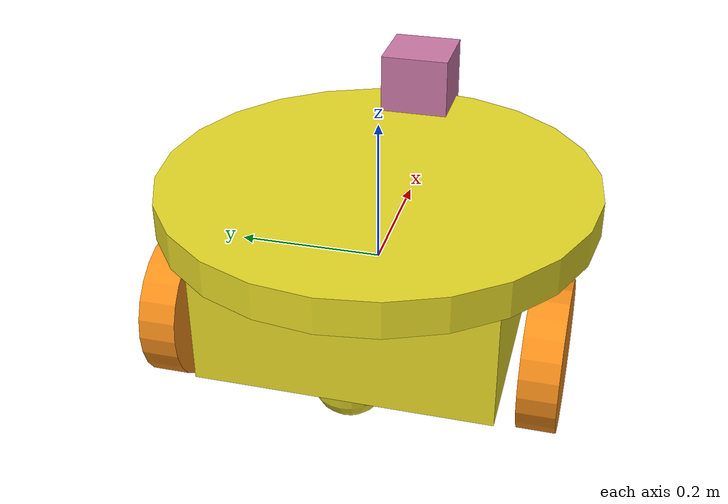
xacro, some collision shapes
<?xml version='1.0'?>

<robot name="my_robot" xmlns:xacro="http://www.ros.org/wiki/xacro">

  <xacro:include filename="$(find my_robot)/urdf/my_robot.gazebo" />

  <link name="robot_footprint"></link>

  <joint name="robot_footprint_joint" type="fixed">
    <origin xyz="0 0 0" rpy="0 0 0" />
    <parent link="robot_footprint"/>
    <child link="chassis" />
  </joint>

  <link name='chassis'>
    <pose>0 0 0.1 0 0 0</pose>

    <inertial>
      <mass value="5.0"/>
      <origin xyz="0.0 0 0" rpy=" 0 0 0"/>
      <inertia
          ixx="0.1" ixy="0" ixz="0"
          iyy="0.1" iyz="0"
          izz="0.1"
      />
    </inertial>

    <collision name='collision'>
      <origin xyz="0 0 0" rpy=" 0 0 0"/>
      <geometry>
        <box size=".4 .4 .2"/>
      </geometry>
    </collision>

    <visual name='chassis_visual'>
      <origin xyz="0 0 0" rpy=" 0 0 0"/>
      <geometry>
        <box size=".4 .4 .2"/>
      </geometry>
    </visual>

    <collision name='back_caster_collision'>
      <origin xyz="-0.15 0 -0.1" rpy=" 0 0 0"/>
      <geometry>
        <sphere radius="0.0499"/>
      </geometry>
    </collision>

    <visual name='back_caster_visual'>
      <origin xyz="-0.15 0 -0.1" rpy=" 0 0 0"/>
      <geometry>
        <sphere radius="0.05"/>
      </geometry>
    </visual>

    <collision name='front_caster_collision'>
      <origin xyz="0.15 0 -0.1" rpy=" 0 0 0"/>
      <geometry>
        <sphere radius="0.0499"/>
      </geometry>
    </collision>

    <visual name='front_caster_visual'>
      <origin xyz="0.15 0 -0.1" rpy=" 0 0 0"/>
      <geometry>
        <sphere radius="0.05"/>
      </geometry>
    </visual>

  </link>

  <link name="left_wheel">

    <collision name="left_wheel_collision">
      <origin xyz="0 0 0" rpy=" 0 1.5707 1.5707"/>
      <geometry>
        <cylinder length="0.05" radius="0.1"/>
      </geometry>
    </collision>

    <visual name="left_wheel_visual">
      <origin xyz="0 0 0" rpy=" 0 1.5707 1.5707"/>
      <geometry>
        <cylinder length="0.05" radius="0.1"/>
      </geometry>
    </visual>

    <inertial>
      <mass value="5.0"/>
      <origin xyz="0 0 0" rpy=" 0 1.5707 1.5707"/>
      <inertia
          ixx="0.1" ixy="0" ixz="0"
          iyy="0.1" iyz="0"
          izz="0.1"
      />
    </inertial>
  </link>

  <joint type="continuous" name="left_wheel_hinge">
    <origin xyz="-0.1 0.25 -0.05" rpy="0 0 0"/>
    <child link="left_wheel"/>
    <parent link="chassis"/>
    <axis xyz="0 1 0" rpy="0 0 0"/>
    <limit effort="10000" velocity="1000"/>
    <dynamics damping="1.0" friction="1.0"/>
  </joint>

  <link name="right_wheel">

    <collision name="right_wheel_collision">
      <origin xyz="0 0 0" rpy=" 0 1.5707 1.5707"/>
      <geometry>
        <cylinder length="0.05" radius="0.1"/>
      </geometry>
    </collision>

    <visual name="right_wheel_visual">
      <origin xyz="0 0 0" rpy=" 0 1.5707 1.5707"/>
      <geometry>
        <cylinder length="0.05" radius="0.1"/>
      </geometry>
    </visual>

    <inertial>
      <mass value="5.0"/>
      <origin xyz="0 0 0" rpy=" 0 1.5707 1.5707"/>
      <inertia
          ixx="0.1" ixy="0" ixz="0"
          iyy="0.1" iyz="0"
          izz="0.1"
      />
    </inertial>
  </link>

  <joint type="continuous" name="right_wheel_hinge">
    <origin xyz="-0.1 -0.25 -0.05" rpy="0 0 0"/>
    <child link="right_wheel"/>
    <parent link="chassis"/>
    <axis xyz="0 1 0" rpy="0 0 0"/>
    <limit effort="10000" velocity="1000"/>
    <dynamics damping="1.0" friction="1.0"/>
  </joint>

  <link name="cover">

    <collision name="cover_collision">
      <origin xyz="0 0 0" rpy=" 0 0 0"/>
      <geometry>
        <cylinder length="0.05" radius="0.3"/>
      </geometry>
    </collision>

    <visual name="cover_visual">
      <origin xyz="0 0 0" rpy=" 0 0 0"/>
      <geometry>
        <cylinder length="0.05" radius="0.3"/>
      </geometry>
    </visual>

    <inertial>
      <mass value="3.0"/>
      <origin xyz="0 0 0" rpy=" 0 0 0"/>
      <inertia
          ixx="0.1" ixy="0" ixz="0"
          iyy="0.1" iyz="0"
          izz="0.1"
      />
    </inertial>
  </link>

  <joint type="fixed" name="cover_joint">
    <origin xyz="0 0 0.1" rpy="0 0 0"/>
    <child link="cover"/>
    <parent link="chassis"/>
    <axis xyz="0 0 1" rpy="0 0 0"/>
  </joint>

  <link name="camera">
    <collision name="camera_collision">
      <origin xyz="0 0 0" rpy=" 0 0 0"/>
      <geometry>
        <box size=".05 .05 .05"/>
      </geometry>
    </collision>

    <visual name="camera_visual">
      <origin xyz="0 0 0" rpy=" 0 0 0"/>
      <geometry>
        <box size=".05 .05 .05"/>
      </geometry>
    </visual>

    <inertial name="camera_inertial">
      <mass value="0.1"/>
      <origin xyz="0 0 0" rpy=" 0 0 0"/>
      <inertia
          ixx="1e-6" ixy="0" ixz="0"
          iyy="1e-6" iyz="0"
          izz="1e-6"
      />
    </inertial>
  </link>

  <joint type="fixed" name="camera_joint">
    <origin xyz="0.23 0 0" rpy="0 0 0"/>
    <child link="camera"/>
    <parent link="chassis"/>
    <axis xyz="0 1 0" rpy="0 0 0"/>
  </joint>

  <link name="hokuyo">
    <collision name="lidar_collision">
      <origin xyz="0 0 0" rpy=" 0 0 0"/>
      <geometry>
        <box size=".1 .1 .1"/>
      </geometry>
    </collision>

    <visual name="lidar_visual">
      <origin xyz="0 0 0" rpy=" 0 0 0"/>
      <geometry>
        <mesh filename="package://my_robot/meshes/hokuyo.dae"/>
      </geometry>
    </visual>

    <inertial name="lidar_inertial">
      <mass value="1e-5"/>
      <origin xyz="0 0 0" rpy=" 0 0 0"/>
      <inertia
          ixx="1e-6" ixy="0" ixz="0"
          iyy="1e-6" iyz="0"
          izz="1e-6"
      />
    </inertial>
  </link>

  <joint type="fixed" name="hokuyo_joint">
    <origin xyz="0.26 0 0.061" rpy="0 0 0"/>
    <child link="hokuyo"/>
    <parent link="cover"/>
    <axis xyz="0 1 0" rpy="0 0 0"/>
  </joint>

  <gazebo reference="camera">
    <material>Gazebo/Red</material>
  </gazebo>

  <gazebo reference="chassis">
    <material>Gazebo/Yellow</material>
  </gazebo>

  <gazebo reference="left_wheel">
    <material>Gazebo/Orange</material>
  </gazebo>

  <gazebo reference="right_wheel">
    <material>Gazebo/Orange</material>
  </gazebo>

  <gazebo reference="cover">
    <material>Gazebo/Yellow</material>
  </gazebo>

</robot>
